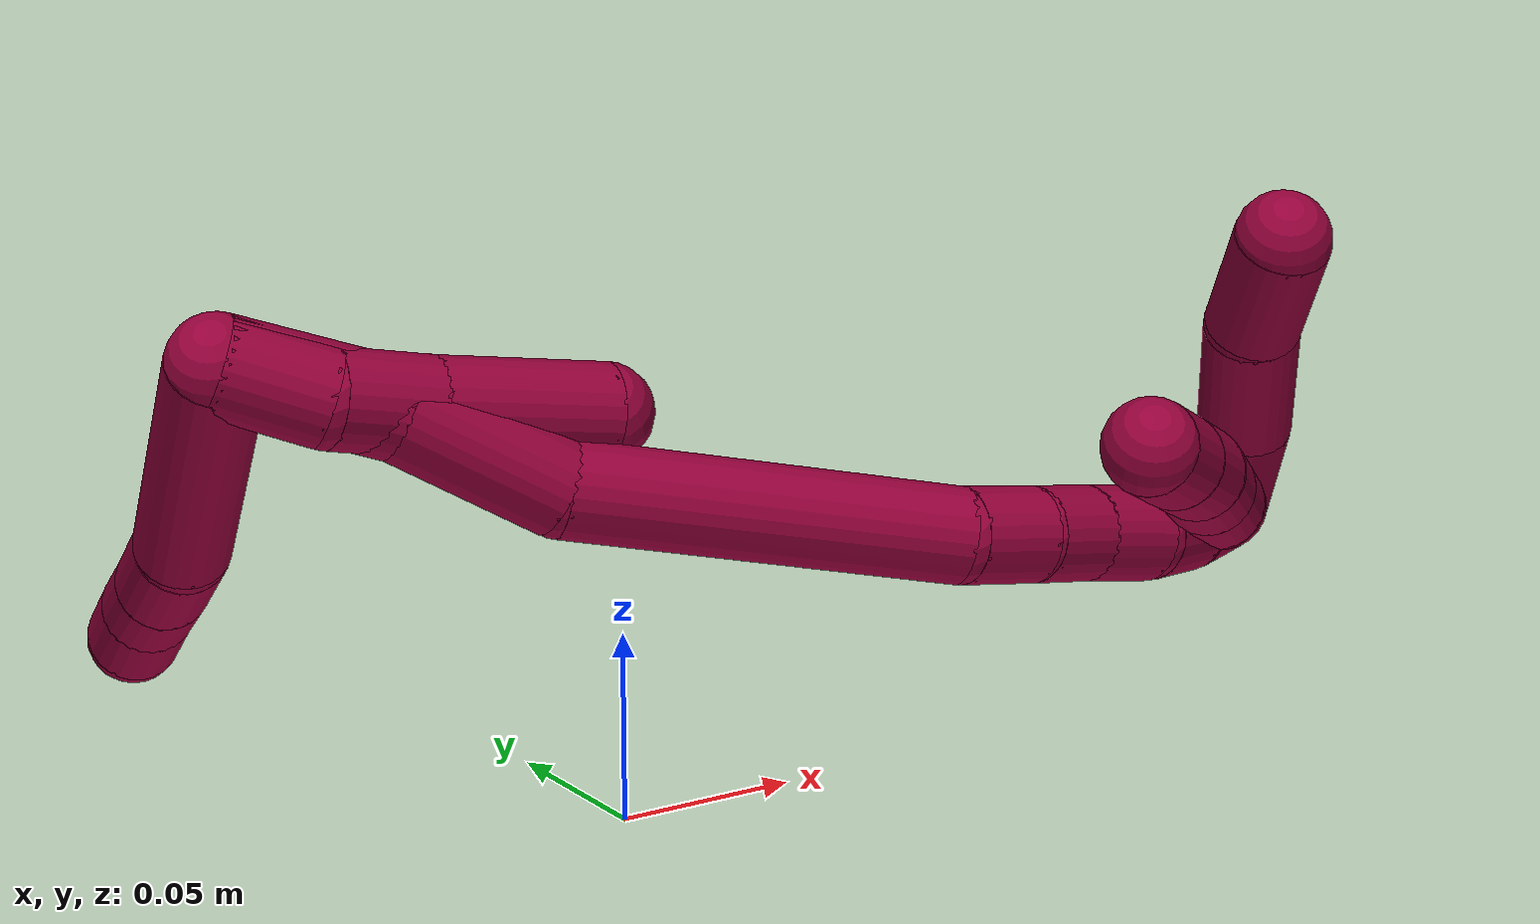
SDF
<sdf version="1.7">
 <world name="default">
  <model name="8">
   <static>0</static>
   <link name="8">
    <collision name="collision-cylinder-e_1_2_8">
     <pose>-0.0076 0.005139 -0.037762 -3.00635 -0.196842 1.93918</pose>
     <geometry><cylinder><radius>0.0125</radius><length>0.077721</length></cylinder></geometry>
     <surface>
      <friction><ode><mu>1.16</mu><mu2>1.16</mu2><slip1>0</slip1><slip2>0</slip2></ode></friction>
      <contact><ode><kp>1e+06</kp><kd>1</kd><max_vel>0</max_vel><min_depth>0.001</min_depth></ode></contact>
     </surface>
    </collision>
    <visual name="visual-cylinder-e_1_2_8">
     <pose>-0.0076 0.005139 -0.037762 -3.00635 -0.196842 1.93918</pose>
     <geometry><cylinder><radius>0.0125</radius><length>0.077721</length></cylinder></geometry>
     <material><ambient>0.584314 0 0.227451 1</ambient></material>
    </visual>
    <collision name="collision-cylinder-e_2_8_9">
     <pose>-0.017047 0.015674 -0.08898 -2.76015 -0.126678 0.634793</pose>
     <geometry><cylinder><radius>0.0125</radius><length>0.02923</length></cylinder></geometry>
     <surface>
      <friction><ode><mu>1.16</mu><mu2>1.16</mu2><slip1>0</slip1><slip2>0</slip2></ode></friction>
      <contact><ode><kp>1e+06</kp><kd>1</kd><max_vel>0</max_vel><min_depth>0.001</min_depth></ode></contact>
     </surface>
    </collision>
    <visual name="visual-cylinder-e_2_8_9">
     <pose>-0.017047 0.015674 -0.08898 -2.76015 -0.126678 0.634793</pose>
     <geometry><cylinder><radius>0.0125</radius><length>0.02923</length></cylinder></geometry>
     <material><ambient>0.584314 0 0.227451 1</ambient></material>
    </visual>
    <collision name="collision-cylinder-e_3_9_10">
     <pose>-0.020272 0.025292 -0.112182 -2.73291 -0.129154 0.604953</pose>
     <geometry><cylinder><radius>0.0125</radius><length>0.02142</length></cylinder></geometry>
     <surface>
      <friction><ode><mu>1.16</mu><mu2>1.16</mu2><slip1>0</slip1><slip2>0</slip2></ode></friction>
      <contact><ode><kp>1e+06</kp><kd>1</kd><max_vel>0</max_vel><min_depth>0.001</min_depth></ode></contact>
     </surface>
    </collision>
    <visual name="visual-cylinder-e_3_9_10">
     <pose>-0.020272 0.025292 -0.112182 -2.73291 -0.129154 0.604953</pose>
     <geometry><cylinder><radius>0.0125</radius><length>0.02142</length></cylinder></geometry>
     <material><ambient>0.584314 0 0.227451 1</ambient></material>
    </visual>
    <collision name="collision-cylinder-e_4_10_6">
     <pose>-0.023561 0.033064 -0.131963 -2.80146 -0.177467 0.956022</pose>
     <geometry><cylinder><radius>0.0125</radius><length>0.021629</length></cylinder></geometry>
     <surface>
      <friction><ode><mu>1.16</mu><mu2>1.16</mu2><slip1>0</slip1><slip2>0</slip2></ode></friction>
      <contact><ode><kp>1e+06</kp><kd>1</kd><max_vel>0</max_vel><min_depth>0.001</min_depth></ode></contact>
     </surface>
    </collision>
    <visual name="visual-cylinder-e_4_10_6">
     <pose>-0.023561 0.033064 -0.131963 -2.80146 -0.177467 0.956022</pose>
     <geometry><cylinder><radius>0.0125</radius><length>0.021629</length></cylinder></geometry>
     <material><ambient>0.584314 0 0.227451 1</ambient></material>
    </visual>
    <collision name="collision-cylinder-e_1_2_11">
     <pose>0.009717 -0.007965 -0.005401 2.16669 0.79022 1.33314</pose>
     <geometry><cylinder><radius>0.0125</radius><length>0.027352</length></cylinder></geometry>
     <surface>
      <friction><ode><mu>1.16</mu><mu2>1.16</mu2><slip1>0</slip1><slip2>0</slip2></ode></friction>
      <contact><ode><kp>1e+06</kp><kd>1</kd><max_vel>0</max_vel><min_depth>0.001</min_depth></ode></contact>
     </surface>
    </collision>
    <visual name="visual-cylinder-e_1_2_11">
     <pose>0.009717 -0.007965 -0.005401 2.16669 0.79022 1.33314</pose>
     <geometry><cylinder><radius>0.0125</radius><length>0.027352</length></cylinder></geometry>
     <material><ambient>0.584314 0 0.227451 1</ambient></material>
    </visual>
    <collision name="collision-cylinder-e_2_11_12">
     <pose>0.03045 -0.019925 -0.01667 2.54379 0.99842 2.11288</pose>
     <geometry><cylinder><radius>0.0125</radius><length>0.02621</length></cylinder></geometry>
     <surface>
      <friction><ode><mu>1.16</mu><mu2>1.16</mu2><slip1>0</slip1><slip2>0</slip2></ode></friction>
      <contact><ode><kp>1e+06</kp><kd>1</kd><max_vel>0</max_vel><min_depth>0.001</min_depth></ode></contact>
     </surface>
    </collision>
    <visual name="visual-cylinder-e_2_11_12">
     <pose>0.03045 -0.019925 -0.01667 2.54379 0.99842 2.11288</pose>
     <geometry><cylinder><radius>0.0125</radius><length>0.02621</length></cylinder></geometry>
     <material><ambient>0.584314 0 0.227451 1</ambient></material>
    </visual>
    <collision name="collision-cylinder-e_3_12_5">
     <pose>0.061534 -0.030791 -0.031982 2.5127 1.04372 2.11211</pose>
     <geometry><cylinder><radius>0.0125</radius><length>0.046438</length></cylinder></geometry>
     <surface>
      <friction><ode><mu>1.16</mu><mu2>1.16</mu2><slip1>0</slip1><slip2>0</slip2></ode></friction>
      <contact><ode><kp>1e+06</kp><kd>1</kd><max_vel>0</max_vel><min_depth>0.001</min_depth></ode></contact>
     </surface>
    </collision>
    <visual name="visual-cylinder-e_3_12_5">
     <pose>0.061534 -0.030791 -0.031982 2.5127 1.04372 2.11211</pose>
     <geometry><cylinder><radius>0.0125</radius><length>0.046438</length></cylinder></geometry>
     <material><ambient>0.584314 0 0.227451 1</ambient></material>
    </visual>
    <collision name="collision-cylinder-e_1_2_13">
     <pose>0.016972 -0.011355 -0.009906 2.28812 0.844733 1.55916</pose>
     <geometry><cylinder><radius>0.0125</radius><length>0.045393</length></cylinder></geometry>
     <surface>
      <friction><ode><mu>1.16</mu><mu2>1.16</mu2><slip1>0</slip1><slip2>0</slip2></ode></friction>
      <contact><ode><kp>1e+06</kp><kd>1</kd><max_vel>0</max_vel><min_depth>0.001</min_depth></ode></contact>
     </surface>
    </collision>
    <visual name="visual-cylinder-e_1_2_13">
     <pose>0.016972 -0.011355 -0.009906 2.28812 0.844733 1.55916</pose>
     <geometry><cylinder><radius>0.0125</radius><length>0.045393</length></cylinder></geometry>
     <material><ambient>0.584314 0 0.227451 1</ambient></material>
    </visual>
    <collision name="collision-cylinder-e_2_13_14">
     <pose>0.047387 -0.036034 -0.031474 2.28981 0.649365 1.27666</pose>
     <geometry><cylinder><radius>0.0125</radius><length>0.044461</length></cylinder></geometry>
     <surface>
      <friction><ode><mu>1.16</mu><mu2>1.16</mu2><slip1>0</slip1><slip2>0</slip2></ode></friction>
      <contact><ode><kp>1e+06</kp><kd>1</kd><max_vel>0</max_vel><min_depth>0.001</min_depth></ode></contact>
     </surface>
    </collision>
    <visual name="visual-cylinder-e_2_13_14">
     <pose>0.047387 -0.036034 -0.031474 2.28981 0.649365 1.27666</pose>
     <geometry><cylinder><radius>0.0125</radius><length>0.044461</length></cylinder></geometry>
     <material><ambient>0.584314 0 0.227451 1</ambient></material>
    </visual>
    <collision name="collision-cylinder-e_3_14_15">
     <pose>0.10359 -0.074305 -0.05992 2.16302 0.957928 1.54574</pose>
     <geometry><cylinder><radius>0.0125</radius><length>0.104549</length></cylinder></geometry>
     <surface>
      <friction><ode><mu>1.16</mu><mu2>1.16</mu2><slip1>0</slip1><slip2>0</slip2></ode></friction>
      <contact><ode><kp>1e+06</kp><kd>1</kd><max_vel>0</max_vel><min_depth>0.001</min_depth></ode></contact>
     </surface>
    </collision>
    <visual name="visual-cylinder-e_3_14_15">
     <pose>0.10359 -0.074305 -0.05992 2.16302 0.957928 1.54574</pose>
     <geometry><cylinder><radius>0.0125</radius><length>0.104549</length></cylinder></geometry>
     <material><ambient>0.584314 0 0.227451 1</ambient></material>
    </visual>
    <collision name="collision-cylinder-e_4_15_16">
     <pose>0.156231 -0.101713 -0.081944 2.70272 1.0409 2.39941</pose>
     <geometry><cylinder><radius>0.0125</radius><length>0.022902</length></cylinder></geometry>
     <surface>
      <friction><ode><mu>1.16</mu><mu2>1.16</mu2><slip1>0</slip1><slip2>0</slip2></ode></friction>
      <contact><ode><kp>1e+06</kp><kd>1</kd><max_vel>0</max_vel><min_depth>0.001</min_depth></ode></contact>
     </surface>
    </collision>
    <visual name="visual-cylinder-e_4_15_16">
     <pose>0.156231 -0.101713 -0.081944 2.70272 1.0409 2.39941</pose>
     <geometry><cylinder><radius>0.0125</radius><length>0.022902</length></cylinder></geometry>
     <material><ambient>0.584314 0 0.227451 1</ambient></material>
    </visual>
    <collision name="collision-cylinder-e_5_16_17">
     <pose>0.17441 -0.105229 -0.092682 2.95179 0.977234 2.78723</pose>
     <geometry><cylinder><radius>0.0125</radius><length>0.02002</length></cylinder></geometry>
     <surface>
      <friction><ode><mu>1.16</mu><mu2>1.16</mu2><slip1>0</slip1><slip2>0</slip2></ode></friction>
      <contact><ode><kp>1e+06</kp><kd>1</kd><max_vel>0</max_vel><min_depth>0.001</min_depth></ode></contact>
     </surface>
    </collision>
    <visual name="visual-cylinder-e_5_16_17">
     <pose>0.17441 -0.105229 -0.092682 2.95179 0.977234 2.78723</pose>
     <geometry><cylinder><radius>0.0125</radius><length>0.02002</length></cylinder></geometry>
     <material><ambient>0.584314 0 0.227451 1</ambient></material>
    </visual>
    <collision name="collision-cylinder-e_6_17_18">
     <pose>0.191882 -0.108181 -0.103832 2.81787 0.994549 2.55714</pose>
     <geometry><cylinder><radius>0.0125</radius><length>0.021884</length></cylinder></geometry>
     <surface>
      <friction><ode><mu>1.16</mu><mu2>1.16</mu2><slip1>0</slip1><slip2>0</slip2></ode></friction>
      <contact><ode><kp>1e+06</kp><kd>1</kd><max_vel>0</max_vel><min_depth>0.001</min_depth></ode></contact>
     </surface>
    </collision>
    <visual name="visual-cylinder-e_6_17_18">
     <pose>0.191882 -0.108181 -0.103832 2.81787 0.994549 2.55714</pose>
     <geometry><cylinder><radius>0.0125</radius><length>0.021884</length></cylinder></geometry>
     <material><ambient>0.584314 0 0.227451 1</ambient></material>
    </visual>
    <collision name="collision-cylinder-e_7_18_19">
     <pose>0.209264 -0.109223 -0.115362 -2.99719 0.944305 -2.8602</pose>
     <geometry><cylinder><radius>0.0125</radius><length>0.020261</length></cylinder></geometry>
     <surface>
      <friction><ode><mu>1.16</mu><mu2>1.16</mu2><slip1>0</slip1><slip2>0</slip2></ode></friction>
      <contact><ode><kp>1e+06</kp><kd>1</kd><max_vel>0</max_vel><min_depth>0.001</min_depth></ode></contact>
     </surface>
    </collision>
    <visual name="visual-cylinder-e_7_18_19">
     <pose>0.209264 -0.109223 -0.115362 -2.99719 0.944305 -2.8602</pose>
     <geometry><cylinder><radius>0.0125</radius><length>0.020261</length></cylinder></geometry>
     <material><ambient>0.584314 0 0.227451 1</ambient></material>
    </visual>
    <collision name="collision-cylinder-e_8_19_1">
     <pose>0.226205 -0.106447 -0.126279 -2.77735 1.01764 -2.50383</pose>
     <geometry><cylinder><radius>0.0125</radius><length>0.020531</length></cylinder></geometry>
     <surface>
      <friction><ode><mu>1.16</mu><mu2>1.16</mu2><slip1>0</slip1><slip2>0</slip2></ode></friction>
      <contact><ode><kp>1e+06</kp><kd>1</kd><max_vel>0</max_vel><min_depth>0.001</min_depth></ode></contact>
     </surface>
    </collision>
    <visual name="visual-cylinder-e_8_19_1">
     <pose>0.226205 -0.106447 -0.126279 -2.77735 1.01764 -2.50383</pose>
     <geometry><cylinder><radius>0.0125</radius><length>0.020531</length></cylinder></geometry>
     <material><ambient>0.584314 0 0.227451 1</ambient></material>
    </visual>
    <collision name="collision-cylinder-e_1_1_20">
     <pose>0.238948 -0.102225 -0.118358 -0.175739 0.295624 -0.026233</pose>
     <geometry><cylinder><radius>0.0125</radius><length>0.02752</length></cylinder></geometry>
     <surface>
      <friction><ode><mu>1.16</mu><mu2>1.16</mu2><slip1>0</slip1><slip2>0</slip2></ode></friction>
      <contact><ode><kp>1e+06</kp><kd>1</kd><max_vel>0</max_vel><min_depth>0.001</min_depth></ode></contact>
     </surface>
    </collision>
    <visual name="visual-cylinder-e_1_1_20">
     <pose>0.238948 -0.102225 -0.118358 -0.175739 0.295624 -0.026233</pose>
     <geometry><cylinder><radius>0.0125</radius><length>0.02752</length></cylinder></geometry>
     <material><ambient>0.584314 0 0.227451 1</ambient></material>
    </visual>
    <collision name="collision-cylinder-e_2_20_21">
     <pose>0.242271 -0.098469 -0.084954 -0.071024 -0.033449 0.001188</pose>
     <geometry><cylinder><radius>0.0125</radius><length>0.041014</length></cylinder></geometry>
     <surface>
      <friction><ode><mu>1.16</mu><mu2>1.16</mu2><slip1>0</slip1><slip2>0</slip2></ode></friction>
      <contact><ode><kp>1e+06</kp><kd>1</kd><max_vel>0</max_vel><min_depth>0.001</min_depth></ode></contact>
     </surface>
    </collision>
    <visual name="visual-cylinder-e_2_20_21">
     <pose>0.242271 -0.098469 -0.084954 -0.071024 -0.033449 0.001188</pose>
     <geometry><cylinder><radius>0.0125</radius><length>0.041014</length></cylinder></geometry>
     <material><ambient>0.584314 0 0.227451 1</ambient></material>
    </visual>
    <collision name="collision-cylinder-e_3_21_4">
     <pose>0.244151 -0.096923 -0.048988 -0.005863 0.163855 -0.000481</pose>
     <geometry><cylinder><radius>0.0125</radius><length>0.031467</length></cylinder></geometry>
     <surface>
      <friction><ode><mu>1.16</mu><mu2>1.16</mu2><slip1>0</slip1><slip2>0</slip2></ode></friction>
      <contact><ode><kp>1e+06</kp><kd>1</kd><max_vel>0</max_vel><min_depth>0.001</min_depth></ode></contact>
     </surface>
    </collision>
    <visual name="visual-cylinder-e_3_21_4">
     <pose>0.244151 -0.096923 -0.048988 -0.005863 0.163855 -0.000481</pose>
     <geometry><cylinder><radius>0.0125</radius><length>0.031467</length></cylinder></geometry>
     <material><ambient>0.584314 0 0.227451 1</ambient></material>
    </visual>
    <collision name="collision-cylinder-e_1_1_22">
     <pose>0.230299 -0.107918 -0.123135 0.392924 -0.482555 -0.097872</pose>
     <geometry><cylinder><radius>0.0125</radius><length>0.02</length></cylinder></geometry>
     <surface>
      <friction><ode><mu>1.16</mu><mu2>1.16</mu2><slip1>0</slip1><slip2>0</slip2></ode></friction>
      <contact><ode><kp>1e+06</kp><kd>1</kd><max_vel>0</max_vel><min_depth>0.001</min_depth></ode></contact>
     </surface>
    </collision>
    <visual name="visual-cylinder-e_1_1_22">
     <pose>0.230299 -0.107918 -0.123135 0.392924 -0.482555 -0.097872</pose>
     <geometry><cylinder><radius>0.0125</radius><length>0.02</length></cylinder></geometry>
     <material><ambient>0.584314 0 0.227451 1</ambient></material>
    </visual>
    <collision name="collision-cylinder-e_2_22_23">
     <pose>0.221363 -0.112889 -0.106061 0.17582 -0.443955 -0.039779</pose>
     <geometry><cylinder><radius>0.0125</radius><length>0.02</length></cylinder></geometry>
     <surface>
      <friction><ode><mu>1.16</mu><mu2>1.16</mu2><slip1>0</slip1><slip2>0</slip2></ode></friction>
      <contact><ode><kp>1e+06</kp><kd>1</kd><max_vel>0</max_vel><min_depth>0.001</min_depth></ode></contact>
     </surface>
    </collision>
    <visual name="visual-cylinder-e_2_22_23">
     <pose>0.221363 -0.112889 -0.106061 0.17582 -0.443955 -0.039779</pose>
     <geometry><cylinder><radius>0.0125</radius><length>0.02</length></cylinder></geometry>
     <material><ambient>0.584314 0 0.227451 1</ambient></material>
    </visual>
    <collision name="collision-cylinder-e_3_23_24">
     <pose>0.212732 -0.116013 -0.088292 0.172254 -0.448467 -0.039378</pose>
     <geometry><cylinder><radius>0.0125</radius><length>0.02</length></cylinder></geometry>
     <surface>
      <friction><ode><mu>1.16</mu><mu2>1.16</mu2><slip1>0</slip1><slip2>0</slip2></ode></friction>
      <contact><ode><kp>1e+06</kp><kd>1</kd><max_vel>0</max_vel><min_depth>0.001</min_depth></ode></contact>
     </surface>
    </collision>
    <visual name="visual-cylinder-e_3_23_24">
     <pose>0.212732 -0.116013 -0.088292 0.172254 -0.448467 -0.039378</pose>
     <geometry><cylinder><radius>0.0125</radius><length>0.02</length></cylinder></geometry>
     <material><ambient>0.584314 0 0.227451 1</ambient></material>
    </visual>
    <collision name="collision-cylinder-e_4_24_25">
     <pose>0.20293 -0.118619 -0.071108 0.127034 -0.578311 -0.037838</pose>
     <geometry><cylinder><radius>0.0125</radius><length>0.02</length></cylinder></geometry>
     <surface>
      <friction><ode><mu>1.16</mu><mu2>1.16</mu2><slip1>0</slip1><slip2>0</slip2></ode></friction>
      <contact><ode><kp>1e+06</kp><kd>1</kd><max_vel>0</max_vel><min_depth>0.001</min_depth></ode></contact>
     </surface>
    </collision>
    <visual name="visual-cylinder-e_4_24_25">
     <pose>0.20293 -0.118619 -0.071108 0.127034 -0.578311 -0.037838</pose>
     <geometry><cylinder><radius>0.0125</radius><length>0.02</length></cylinder></geometry>
     <material><ambient>0.584314 0 0.227451 1</ambient></material>
    </visual>
    <collision name="collision-cylinder-e_5_25_3">
     <pose>0.191836 -0.120219 -0.054553 0.065262 -0.597757 -0.020114</pose>
     <geometry><cylinder><radius>0.0125</radius><length>0.02</length></cylinder></geometry>
     <surface>
      <friction><ode><mu>1.16</mu><mu2>1.16</mu2><slip1>0</slip1><slip2>0</slip2></ode></friction>
      <contact><ode><kp>1e+06</kp><kd>1</kd><max_vel>0</max_vel><min_depth>0.001</min_depth></ode></contact>
     </surface>
    </collision>
    <visual name="visual-cylinder-e_5_25_3">
     <pose>0.191836 -0.120219 -0.054553 0.065262 -0.597757 -0.020114</pose>
     <geometry><cylinder><radius>0.0125</radius><length>0.02</length></cylinder></geometry>
     <material><ambient>0.584314 0 0.227451 1</ambient></material>
    </visual>
    <collision name="collision-sphere-3">
     <pose>0.186208 -0.120758 -0.046304 0 -0 0</pose>
     <geometry><sphere><radius>0.0125</radius></sphere></geometry>
     <surface>
      <friction><ode><mu>1.16</mu><mu2>1.16</mu2><slip1>0</slip1><slip2>0</slip2></ode></friction>
      <contact><ode><kp>1e+06</kp><kd>1</kd><max_vel>0</max_vel><min_depth>0.001</min_depth></ode></contact>
     </surface>
    </collision>
    <visual name="visual-sphere-3">
     <pose>0.186208 -0.120758 -0.046304 0 -0 0</pose>
     <geometry><sphere><radius>0.0125</radius></sphere></geometry>
     <material><ambient>0.584314 0 0.227451 1</ambient></material>
    </visual>
    <collision name="collision-sphere-25">
     <pose>0.197464 -0.119679 -0.062801 0 -0 0</pose>
     <geometry><sphere><radius>0.0125</radius></sphere></geometry>
     <surface>
      <friction><ode><mu>1.16</mu><mu2>1.16</mu2><slip1>0</slip1><slip2>0</slip2></ode></friction>
      <contact><ode><kp>1e+06</kp><kd>1</kd><max_vel>0</max_vel><min_depth>0.001</min_depth></ode></contact>
     </surface>
    </collision>
    <visual name="visual-sphere-25">
     <pose>0.197464 -0.119679 -0.062801 0 -0 0</pose>
     <geometry><sphere><radius>0.0125</radius></sphere></geometry>
     <material><ambient>0.584314 0 0.227451 1</ambient></material>
    </visual>
    <collision name="collision-sphere-24">
     <pose>0.208396 -0.117558 -0.079414 0 -0 0</pose>
     <geometry><sphere><radius>0.0125</radius></sphere></geometry>
     <surface>
      <friction><ode><mu>1.16</mu><mu2>1.16</mu2><slip1>0</slip1><slip2>0</slip2></ode></friction>
      <contact><ode><kp>1e+06</kp><kd>1</kd><max_vel>0</max_vel><min_depth>0.001</min_depth></ode></contact>
     </surface>
    </collision>
    <visual name="visual-sphere-24">
     <pose>0.208396 -0.117558 -0.079414 0 -0 0</pose>
     <geometry><sphere><radius>0.0125</radius></sphere></geometry>
     <material><ambient>0.584314 0 0.227451 1</ambient></material>
    </visual>
    <collision name="collision-sphere-23">
     <pose>0.217068 -0.114469 -0.09717 0 -0 0</pose>
     <geometry><sphere><radius>0.0125</radius></sphere></geometry>
     <surface>
      <friction><ode><mu>1.16</mu><mu2>1.16</mu2><slip1>0</slip1><slip2>0</slip2></ode></friction>
      <contact><ode><kp>1e+06</kp><kd>1</kd><max_vel>0</max_vel><min_depth>0.001</min_depth></ode></contact>
     </surface>
    </collision>
    <visual name="visual-sphere-23">
     <pose>0.217068 -0.114469 -0.09717 0 -0 0</pose>
     <geometry><sphere><radius>0.0125</radius></sphere></geometry>
     <material><ambient>0.584314 0 0.227451 1</ambient></material>
    </visual>
    <collision name="collision-sphere-22">
     <pose>0.225658 -0.111309 -0.114952 0 -0 0</pose>
     <geometry><sphere><radius>0.0125</radius></sphere></geometry>
     <surface>
      <friction><ode><mu>1.16</mu><mu2>1.16</mu2><slip1>0</slip1><slip2>0</slip2></ode></friction>
      <contact><ode><kp>1e+06</kp><kd>1</kd><max_vel>0</max_vel><min_depth>0.001</min_depth></ode></contact>
     </surface>
    </collision>
    <visual name="visual-sphere-22">
     <pose>0.225658 -0.111309 -0.114952 0 -0 0</pose>
     <geometry><sphere><radius>0.0125</radius></sphere></geometry>
     <material><ambient>0.584314 0 0.227451 1</ambient></material>
    </visual>
    <collision name="collision-sphere-4">
     <pose>0.246718 -0.096832 -0.033466 0 -0 0</pose>
     <geometry><sphere><radius>0.0125</radius></sphere></geometry>
     <surface>
      <friction><ode><mu>1.16</mu><mu2>1.16</mu2><slip1>0</slip1><slip2>0</slip2></ode></friction>
      <contact><ode><kp>1e+06</kp><kd>1</kd><max_vel>0</max_vel><min_depth>0.001</min_depth></ode></contact>
     </surface>
    </collision>
    <visual name="visual-sphere-4">
     <pose>0.246718 -0.096832 -0.033466 0 -0 0</pose>
     <geometry><sphere><radius>0.0125</radius></sphere></geometry>
     <material><ambient>0.584314 0 0.227451 1</ambient></material>
    </visual>
    <collision name="collision-sphere-21">
     <pose>0.241585 -0.097014 -0.064511 0 -0 0</pose>
     <geometry><sphere><radius>0.0125</radius></sphere></geometry>
     <surface>
      <friction><ode><mu>1.16</mu><mu2>1.16</mu2><slip1>0</slip1><slip2>0</slip2></ode></friction>
      <contact><ode><kp>1e+06</kp><kd>1</kd><max_vel>0</max_vel><min_depth>0.001</min_depth></ode></contact>
     </surface>
    </collision>
    <visual name="visual-sphere-21">
     <pose>0.241585 -0.097014 -0.064511 0 -0 0</pose>
     <geometry><sphere><radius>0.0125</radius></sphere></geometry>
     <material><ambient>0.584314 0 0.227451 1</ambient></material>
    </visual>
    <collision name="collision-sphere-20">
     <pose>0.242957 -0.099923 -0.105398 0 -0 0</pose>
     <geometry><sphere><radius>0.0125</radius></sphere></geometry>
     <surface>
      <friction><ode><mu>1.16</mu><mu2>1.16</mu2><slip1>0</slip1><slip2>0</slip2></ode></friction>
      <contact><ode><kp>1e+06</kp><kd>1</kd><max_vel>0</max_vel><min_depth>0.001</min_depth></ode></contact>
     </surface>
    </collision>
    <visual name="visual-sphere-20">
     <pose>0.242957 -0.099923 -0.105398 0 -0 0</pose>
     <geometry><sphere><radius>0.0125</radius></sphere></geometry>
     <material><ambient>0.584314 0 0.227451 1</ambient></material>
    </visual>
    <collision name="collision-sphere-11">
     <pose>0.019434 -0.01593 -0.010803 0 -0 0</pose>
     <geometry><sphere><radius>0.0125</radius></sphere></geometry>
     <surface>
      <friction><ode><mu>1.16</mu><mu2>1.16</mu2><slip1>0</slip1><slip2>0</slip2></ode></friction>
      <contact><ode><kp>1e+06</kp><kd>1</kd><max_vel>0</max_vel><min_depth>0.001</min_depth></ode></contact>
     </surface>
    </collision>
    <visual name="visual-sphere-11">
     <pose>0.019434 -0.01593 -0.010803 0 -0 0</pose>
     <geometry><sphere><radius>0.0125</radius></sphere></geometry>
     <material><ambient>0.584314 0 0.227451 1</ambient></material>
    </visual>
    <collision name="collision-sphere-6">
     <pose>-0.02547 0.036615 -0.141998 0 -0 0</pose>
     <geometry><sphere><radius>0.0125</radius></sphere></geometry>
     <surface>
      <friction><ode><mu>1.16</mu><mu2>1.16</mu2><slip1>0</slip1><slip2>0</slip2></ode></friction>
      <contact><ode><kp>1e+06</kp><kd>1</kd><max_vel>0</max_vel><min_depth>0.001</min_depth></ode></contact>
     </surface>
    </collision>
    <visual name="visual-sphere-6">
     <pose>-0.02547 0.036615 -0.141998 0 -0 0</pose>
     <geometry><sphere><radius>0.0125</radius></sphere></geometry>
     <material><ambient>0.584314 0 0.227451 1</ambient></material>
    </visual>
    <collision name="collision-sphere-10">
     <pose>-0.021652 0.029513 -0.121928 0 -0 0</pose>
     <geometry><sphere><radius>0.0125</radius></sphere></geometry>
     <surface>
      <friction><ode><mu>1.16</mu><mu2>1.16</mu2><slip1>0</slip1><slip2>0</slip2></ode></friction>
      <contact><ode><kp>1e+06</kp><kd>1</kd><max_vel>0</max_vel><min_depth>0.001</min_depth></ode></contact>
     </surface>
    </collision>
    <visual name="visual-sphere-10">
     <pose>-0.021652 0.029513 -0.121928 0 -0 0</pose>
     <geometry><sphere><radius>0.0125</radius></sphere></geometry>
     <material><ambient>0.584314 0 0.227451 1</ambient></material>
    </visual>
    <collision name="collision-sphere-9">
     <pose>-0.018893 0.021071 -0.102436 0 -0 0</pose>
     <geometry><sphere><radius>0.0125</radius></sphere></geometry>
     <surface>
      <friction><ode><mu>1.16</mu><mu2>1.16</mu2><slip1>0</slip1><slip2>0</slip2></ode></friction>
      <contact><ode><kp>1e+06</kp><kd>1</kd><max_vel>0</max_vel><min_depth>0.001</min_depth></ode></contact>
     </surface>
    </collision>
    <visual name="visual-sphere-9">
     <pose>-0.018893 0.021071 -0.102436 0 -0 0</pose>
     <geometry><sphere><radius>0.0125</radius></sphere></geometry>
     <material><ambient>0.584314 0 0.227451 1</ambient></material>
    </visual>
    <collision name="collision-sphere-2">
     <geometry><sphere><radius>0.0125</radius></sphere></geometry>
     <surface>
      <friction><ode><mu>1.16</mu><mu2>1.16</mu2><slip1>0</slip1><slip2>0</slip2></ode></friction>
      <contact><ode><kp>1e+06</kp><kd>1</kd><max_vel>0</max_vel><min_depth>0.001</min_depth></ode></contact>
     </surface>
    </collision>
    <visual name="visual-sphere-2">
     <geometry><sphere><radius>0.0125</radius></sphere></geometry>
     <material><ambient>0.584314 0 0.227451 1</ambient></material>
    </visual>
    <collision name="collision-sphere-19">
     <pose>0.21747 -0.108368 -0.12124 0 -0 0</pose>
     <geometry><sphere><radius>0.0125</radius></sphere></geometry>
     <surface>
      <friction><ode><mu>1.16</mu><mu2>1.16</mu2><slip1>0</slip1><slip2>0</slip2></ode></friction>
      <contact><ode><kp>1e+06</kp><kd>1</kd><max_vel>0</max_vel><min_depth>0.001</min_depth></ode></contact>
     </surface>
    </collision>
    <visual name="visual-sphere-19">
     <pose>0.21747 -0.108368 -0.12124 0 -0 0</pose>
     <geometry><sphere><radius>0.0125</radius></sphere></geometry>
     <material><ambient>0.584314 0 0.227451 1</ambient></material>
    </visual>
    <collision name="collision-sphere-8">
     <pose>-0.0152 0.010277 -0.075524 0 -0 0</pose>
     <geometry><sphere><radius>0.0125</radius></sphere></geometry>
     <surface>
      <friction><ode><mu>1.16</mu><mu2>1.16</mu2><slip1>0</slip1><slip2>0</slip2></ode></friction>
      <contact><ode><kp>1e+06</kp><kd>1</kd><max_vel>0</max_vel><min_depth>0.001</min_depth></ode></contact>
     </surface>
    </collision>
    <visual name="visual-sphere-8">
     <pose>-0.0152 0.010277 -0.075524 0 -0 0</pose>
     <geometry><sphere><radius>0.0125</radius></sphere></geometry>
     <material><ambient>0.584314 0 0.227451 1</ambient></material>
    </visual>
    <collision name="collision-sphere-12">
     <pose>0.041466 -0.02392 -0.022537 0 -0 0</pose>
     <geometry><sphere><radius>0.0125</radius></sphere></geometry>
     <surface>
      <friction><ode><mu>1.16</mu><mu2>1.16</mu2><slip1>0</slip1><slip2>0</slip2></ode></friction>
      <contact><ode><kp>1e+06</kp><kd>1</kd><max_vel>0</max_vel><min_depth>0.001</min_depth></ode></contact>
     </surface>
    </collision>
    <visual name="visual-sphere-12">
     <pose>0.041466 -0.02392 -0.022537 0 -0 0</pose>
     <geometry><sphere><radius>0.0125</radius></sphere></geometry>
     <material><ambient>0.584314 0 0.227451 1</ambient></material>
    </visual>
    <collision name="collision-sphere-5">
     <pose>0.081602 -0.037661 -0.041426 0 -0 0</pose>
     <geometry><sphere><radius>0.0125</radius></sphere></geometry>
     <surface>
      <friction><ode><mu>1.16</mu><mu2>1.16</mu2><slip1>0</slip1><slip2>0</slip2></ode></friction>
      <contact><ode><kp>1e+06</kp><kd>1</kd><max_vel>0</max_vel><min_depth>0.001</min_depth></ode></contact>
     </surface>
    </collision>
    <visual name="visual-sphere-5">
     <pose>0.081602 -0.037661 -0.041426 0 -0 0</pose>
     <geometry><sphere><radius>0.0125</radius></sphere></geometry>
     <material><ambient>0.584314 0 0.227451 1</ambient></material>
    </visual>
    <collision name="collision-sphere-13">
     <pose>0.033945 -0.022711 -0.019812 0 -0 0</pose>
     <geometry><sphere><radius>0.0125</radius></sphere></geometry>
     <surface>
      <friction><ode><mu>1.16</mu><mu2>1.16</mu2><slip1>0</slip1><slip2>0</slip2></ode></friction>
      <contact><ode><kp>1e+06</kp><kd>1</kd><max_vel>0</max_vel><min_depth>0.001</min_depth></ode></contact>
     </surface>
    </collision>
    <visual name="visual-sphere-13">
     <pose>0.033945 -0.022711 -0.019812 0 -0 0</pose>
     <geometry><sphere><radius>0.0125</radius></sphere></geometry>
     <material><ambient>0.584314 0 0.227451 1</ambient></material>
    </visual>
    <collision name="collision-sphere-14">
     <pose>0.060829 -0.049357 -0.043135 0 -0 0</pose>
     <geometry><sphere><radius>0.0125</radius></sphere></geometry>
     <surface>
      <friction><ode><mu>1.16</mu><mu2>1.16</mu2><slip1>0</slip1><slip2>0</slip2></ode></friction>
      <contact><ode><kp>1e+06</kp><kd>1</kd><max_vel>0</max_vel><min_depth>0.001</min_depth></ode></contact>
     </surface>
    </collision>
    <visual name="visual-sphere-14">
     <pose>0.060829 -0.049357 -0.043135 0 -0 0</pose>
     <geometry><sphere><radius>0.0125</radius></sphere></geometry>
     <material><ambient>0.584314 0 0.227451 1</ambient></material>
    </visual>
    <collision name="collision-sphere-15">
     <pose>0.146351 -0.099254 -0.076705 0 -0 0</pose>
     <geometry><sphere><radius>0.0125</radius></sphere></geometry>
     <surface>
      <friction><ode><mu>1.16</mu><mu2>1.16</mu2><slip1>0</slip1><slip2>0</slip2></ode></friction>
      <contact><ode><kp>1e+06</kp><kd>1</kd><max_vel>0</max_vel><min_depth>0.001</min_depth></ode></contact>
     </surface>
    </collision>
    <visual name="visual-sphere-15">
     <pose>0.146351 -0.099254 -0.076705 0 -0 0</pose>
     <geometry><sphere><radius>0.0125</radius></sphere></geometry>
     <material><ambient>0.584314 0 0.227451 1</ambient></material>
    </visual>
    <collision name="collision-sphere-16">
     <pose>0.166112 -0.104172 -0.087184 0 -0 0</pose>
     <geometry><sphere><radius>0.0125</radius></sphere></geometry>
     <surface>
      <friction><ode><mu>1.16</mu><mu2>1.16</mu2><slip1>0</slip1><slip2>0</slip2></ode></friction>
      <contact><ode><kp>1e+06</kp><kd>1</kd><max_vel>0</max_vel><min_depth>0.001</min_depth></ode></contact>
     </surface>
    </collision>
    <visual name="visual-sphere-16">
     <pose>0.166112 -0.104172 -0.087184 0 -0 0</pose>
     <geometry><sphere><radius>0.0125</radius></sphere></geometry>
     <material><ambient>0.584314 0 0.227451 1</ambient></material>
    </visual>
    <collision name="collision-sphere-17">
     <pose>0.182707 -0.106285 -0.09818 0 -0 0</pose>
     <geometry><sphere><radius>0.0125</radius></sphere></geometry>
     <surface>
      <friction><ode><mu>1.16</mu><mu2>1.16</mu2><slip1>0</slip1><slip2>0</slip2></ode></friction>
      <contact><ode><kp>1e+06</kp><kd>1</kd><max_vel>0</max_vel><min_depth>0.001</min_depth></ode></contact>
     </surface>
    </collision>
    <visual name="visual-sphere-17">
     <pose>0.182707 -0.106285 -0.09818 0 -0 0</pose>
     <geometry><sphere><radius>0.0125</radius></sphere></geometry>
     <material><ambient>0.584314 0 0.227451 1</ambient></material>
    </visual>
    <collision name="collision-sphere-18">
     <pose>0.201057 -0.110078 -0.109484 0 -0 0</pose>
     <geometry><sphere><radius>0.0125</radius></sphere></geometry>
     <surface>
      <friction><ode><mu>1.16</mu><mu2>1.16</mu2><slip1>0</slip1><slip2>0</slip2></ode></friction>
      <contact><ode><kp>1e+06</kp><kd>1</kd><max_vel>0</max_vel><min_depth>0.001</min_depth></ode></contact>
     </surface>
    </collision>
    <visual name="visual-sphere-18">
     <pose>0.201057 -0.110078 -0.109484 0 -0 0</pose>
     <geometry><sphere><radius>0.0125</radius></sphere></geometry>
     <material><ambient>0.584314 0 0.227451 1</ambient></material>
    </visual>
    <collision name="collision-sphere-1">
     <pose>0.234939 -0.104526 -0.131318 0 -0 0</pose>
     <geometry><sphere><radius>0.0125</radius></sphere></geometry>
     <surface>
      <friction><ode><mu>1.16</mu><mu2>1.16</mu2><slip1>0</slip1><slip2>0</slip2></ode></friction>
      <contact><ode><kp>1e+06</kp><kd>1</kd><max_vel>0</max_vel><min_depth>0.001</min_depth></ode></contact>
     </surface>
    </collision>
    <visual name="visual-sphere-1">
     <pose>0.234939 -0.104526 -0.131318 0 -0 0</pose>
     <geometry><sphere><radius>0.0125</radius></sphere></geometry>
     <material><ambient>0.584314 0 0.227451 1</ambient></material>
    </visual>
    <inertial>
     <pose>0.108169 -0.056744 -0.065409 0 -0 0</pose>
     <mass>0.75</mass>
     <inertia>
      <ixx>0.000148</ixx>
      <ixy>0</ixy>
      <ixz>0</ixz>
      <iyy>0.000238</iyy>
      <iyz>0</iyz>
      <izz>-5.7e-05</izz>
     </inertia>
    </inertial>
   </link>
   <pose>-0.10515 0.007754 0.132047 0.59304 -0.38208 -0.07888</pose>
  </model>
 </world>
</sdf>
